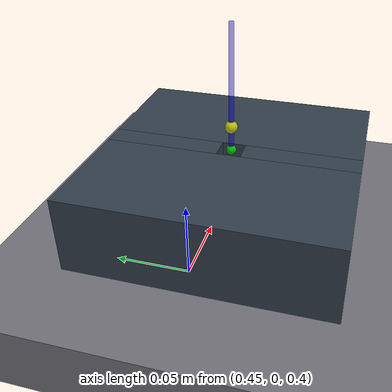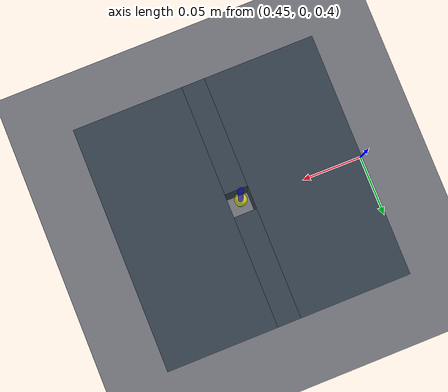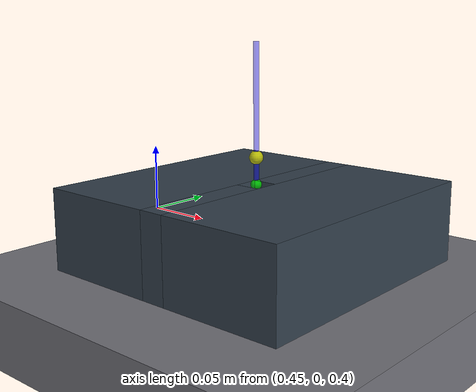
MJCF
<mujoco model="robustlearn insertion workcell">
  <asset>
    <material
      name="workstation_material"
      rgba="0.45 0.45 0.48 1"
    />

    <material
      name="fixture_material"
      rgba="0.20 0.25 0.30 1"
    />
  </asset>

  <worldbody>
  <frame name="workcell_root">
    <camera
      name="workcell_oblique"
      mode="fixed"
      pos="1.05 -0.75 0.95"
      xyaxes="0.834354 0.551230 0 -0.265897 0.402468 0.875967"
      fovy="45"
      resolution="320 240"
      output="rgb depth"
    />

    <geom
      name="ground"
      type="plane"
      size="2 2 0.05"
      rgba="0.15 0.15 0.15 1"
    />

    <body
      name="workstation"
      pos="0.55 0 0.35"
    >
      <geom
        name="workstation_visual"
        type="box"
        size="0.45 0.40 0.025"
        material="workstation_material"
        contype="0"
        conaffinity="0"
        group="2"
      />

      <geom
        name="workstation_collision"
        type="box"
        size="0.45 0.40 0.025"
        group="3"
      />
    </body>

    <body
      name="insertion_fixture"
      pos="0.5545 0 0.405"
    >

      <!-- Left wall -->

      <geom
        name="fixture_left_visual"
        type="box"
        pos="-0.05475 0 0"
        size="0.04525 0.10 0.03"
        material="fixture_material"
        contype="0"
        conaffinity="0"
        group="2"
      />

      <geom
        name="fixture_left_collision"
        type="box"
        pos="-0.05475 0 0"
        size="0.04525 0.10 0.03"
        group="3"
      />

      <!-- Right wall -->

      <geom
        name="fixture_right_visual"
        type="box"
        pos="0.05475 0 0"
        size="0.04525 0.10 0.03"
        material="fixture_material"
        contype="0"
        conaffinity="0"
        group="2"
      />

      <geom
        name="fixture_right_collision"
        type="box"
        pos="0.05475 0 0"
        size="0.04525 0.10 0.03"
        group="3"
      />

      <!-- Front wall -->

      <geom
        name="fixture_front_visual"
        type="box"
        pos="0 -0.05475 0"
        size="0.0095 0.04525 0.03"
        material="fixture_material"
        contype="0"
        conaffinity="0"
        group="2"
      />

      <geom
        name="fixture_front_collision"
        type="box"
        pos="0 -0.05475 0"
        size="0.0095 0.04525 0.03"
        group="3"
      />

      <!-- Rear wall -->

      <geom
        name="fixture_rear_visual"
        type="box"
        pos="0 0.05475 0"
        size="0.0095 0.04525 0.03"
        material="fixture_material"
        contype="0"
        conaffinity="0"
        group="2"
      />

      <geom
        name="fixture_rear_collision"
        type="box"
        pos="0 0.05475 0"
        size="0.0095 0.04525 0.03"
        group="3"
      />

      <body
        name="receptacle"
        pos="0 0 0.03"
      >
        <site
          name="receptacle_center"
          pos="0 0 0"
          type="sphere"
          size="0.004"
          rgba="0 1 0 0.7"
        />

        <site
          name="insertion_axis"
          pos="0 0 0.05"
          type="cylinder"
          size="0.002 0.05"
          rgba="0 0 1 0.45"
        />

        <site
          name="pre_insertion"
          pos="0 0 0.0195"
          type="sphere"
          size="0.005"
          rgba="1 1 0 0.7"
        />
      </body>
    </body>
    </frame>
  </worldbody>
</mujoco>
